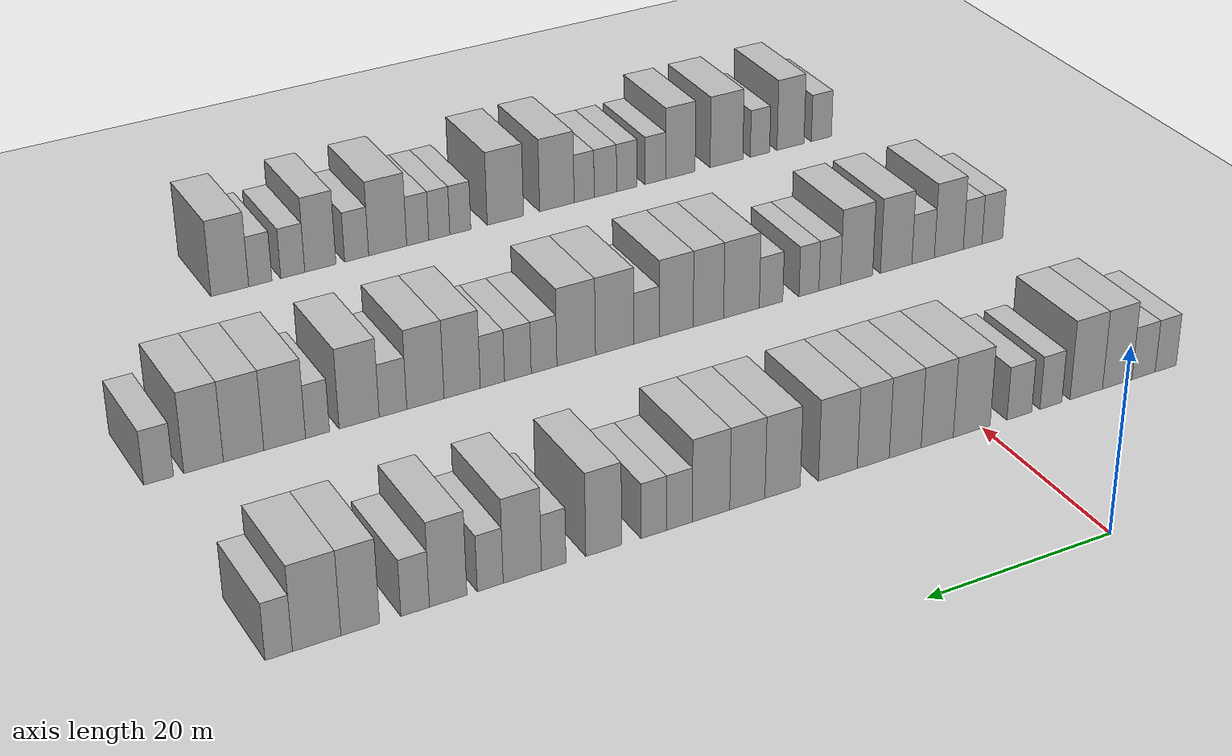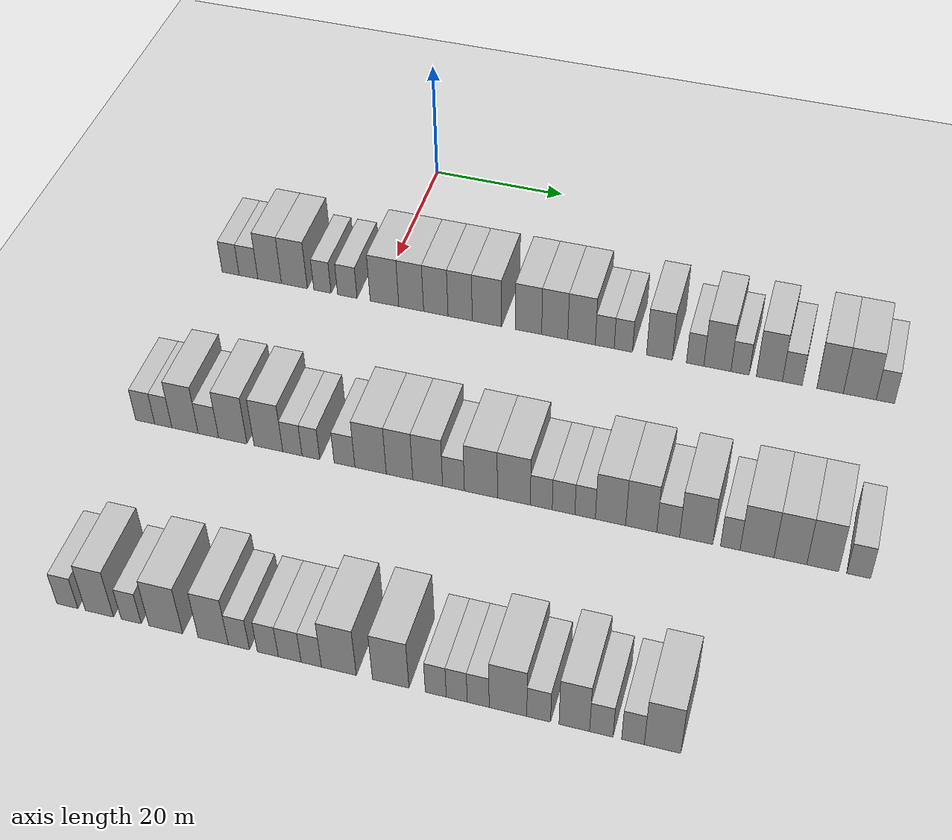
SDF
<sdf version="1.6">
 <world name="default">
  <include><name>ground_plane_1</name><uri>model://HANNAS_ground_plane</uri></include>
  <model name="building_106">
   <static>1</static>
   <pose>25.0000 -22.3956 0 0.000000 0.000000 0.000000</pose>
   <link name="link">
    <pose>0 0 3.00 0 0 0</pose>
    <collision name="collision"><geometry><box><size>10.0000 2.6527 6.0000</size></box></geometry></collision>
    <visual name="visual">
     <cast_shadows>0</cast_shadows>
     <geometry><box><size>10.0000 2.6527 6.0000</size></box></geometry>
     <material>
      <script>
       <uri>model://HANNAS_wall/materials/scripts</uri>
       <uri>model://HANNAS_wall/materials/textures</uri>
       <name>vrc/HANNAS_wall</name>
      </script>
     </material>
    </visual>
   </link>
  </model>
  <model name="building_107">
   <static>1</static>
   <pose>25.0000 -19.6067 0 0.000000 0.000000 0.000000</pose>
   <link name="link">
    <pose>0 0 3.00 0 0 0</pose>
    <collision name="collision"><geometry><box><size>10.0000 2.9250 6.0000</size></box></geometry></collision>
    <visual name="visual">
     <cast_shadows>0</cast_shadows>
     <geometry><box><size>10.0000 2.9250 6.0000</size></box></geometry>
     <material>
      <script>
       <uri>model://HANNAS_wall/materials/scripts</uri>
       <uri>model://HANNAS_wall/materials/textures</uri>
       <name>vrc/HANNAS_wall</name>
      </script>
     </material>
    </visual>
   </link>
  </model>
  <model name="building_108">
   <static>1</static>
   <pose>25.0000 -16.3152 0 0.000000 0.000000 0.000000</pose>
   <link name="link">
    <pose>0 0 4.50 0 0 0</pose>
    <collision name="collision"><geometry><box><size>10.0000 3.6581 9.0000</size></box></geometry></collision>
    <visual name="visual">
     <cast_shadows>0</cast_shadows>
     <geometry><box><size>10.0000 3.6581 9.0000</size></box></geometry>
     <material>
      <script>
       <uri>model://HANNAS_wall/materials/scripts</uri>
       <uri>model://HANNAS_wall/materials/textures</uri>
       <name>vrc/HANNAS_wall</name>
      </script>
     </material>
    </visual>
   </link>
  </model>
  <model name="building_109">
   <static>1</static>
   <pose>25.0000 -12.4879 0 0.000000 0.000000 0.000000</pose>
   <link name="link">
    <pose>0 0 4.50 0 0 0</pose>
    <collision name="collision"><geometry><box><size>10.0000 3.9965 9.0000</size></box></geometry></collision>
    <visual name="visual">
     <cast_shadows>0</cast_shadows>
     <geometry><box><size>10.0000 3.9965 9.0000</size></box></geometry>
     <material>
      <script>
       <uri>model://HANNAS_wall/materials/scripts</uri>
       <uri>model://HANNAS_wall/materials/textures</uri>
       <name>vrc/HANNAS_wall</name>
      </script>
     </material>
    </visual>
   </link>
  </model>
  <model name="building_110">
   <static>1</static>
   <pose>25.0000 -8.1685 0 0.000000 0.000000 0.000000</pose>
   <link name="link">
    <pose>0 0 3.00 0 0 0</pose>
    <collision name="collision"><geometry><box><size>10.0000 2.6422 6.0000</size></box></geometry></collision>
    <visual name="visual">
     <cast_shadows>0</cast_shadows>
     <geometry><box><size>10.0000 2.6422 6.0000</size></box></geometry>
     <material>
      <script>
       <uri>model://HANNAS_wall/materials/scripts</uri>
       <uri>model://HANNAS_wall/materials/textures</uri>
       <name>vrc/HANNAS_wall</name>
      </script>
     </material>
    </visual>
   </link>
  </model>
  <model name="building_111">
   <static>1</static>
   <pose>25.0000 -4.3697 0 0.000000 0.000000 0.000000</pose>
   <link name="link">
    <pose>0 0 3.00 0 0 0</pose>
    <collision name="collision"><geometry><box><size>10.0000 2.9555 6.0000</size></box></geometry></collision>
    <visual name="visual">
     <cast_shadows>0</cast_shadows>
     <geometry><box><size>10.0000 2.9555 6.0000</size></box></geometry>
     <material>
      <script>
       <uri>model://HANNAS_wall/materials/scripts</uri>
       <uri>model://HANNAS_wall/materials/textures</uri>
       <name>vrc/HANNAS_wall</name>
      </script>
     </material>
    </visual>
   </link>
  </model>
  <model name="building_112">
   <static>1</static>
   <pose>25.0000 1.2695 0 0.000000 0.000000 0.000000</pose>
   <link name="link">
    <pose>0 0 4.50 0 0 0</pose>
    <collision name="collision"><geometry><box><size>10.0000 4.3230 9.0000</size></box></geometry></collision>
    <visual name="visual">
     <cast_shadows>0</cast_shadows>
     <geometry><box><size>10.0000 4.3230 9.0000</size></box></geometry>
     <material>
      <script>
       <uri>model://HANNAS_wall/materials/scripts</uri>
       <uri>model://HANNAS_wall/materials/textures</uri>
       <name>vrc/HANNAS_wall</name>
      </script>
     </material>
    </visual>
   </link>
  </model>
  <model name="building_113">
   <static>1</static>
   <pose>25.0000 5.2965 0 0.000000 0.000000 0.000000</pose>
   <link name="link">
    <pose>0 0 4.50 0 0 0</pose>
    <collision name="collision"><geometry><box><size>10.0000 3.7311 9.0000</size></box></geometry></collision>
    <visual name="visual">
     <cast_shadows>0</cast_shadows>
     <geometry><box><size>10.0000 3.7311 9.0000</size></box></geometry>
     <material>
      <script>
       <uri>model://HANNAS_wall/materials/scripts</uri>
       <uri>model://HANNAS_wall/materials/textures</uri>
       <name>vrc/HANNAS_wall</name>
      </script>
     </material>
    </visual>
   </link>
  </model>
  <model name="building_114">
   <static>1</static>
   <pose>25.0000 8.9844 0 0.000000 0.000000 0.000000</pose>
   <link name="link">
    <pose>0 0 4.50 0 0 0</pose>
    <collision name="collision"><geometry><box><size>10.0000 3.6447 9.0000</size></box></geometry></collision>
    <visual name="visual">
     <cast_shadows>0</cast_shadows>
     <geometry><box><size>10.0000 3.6447 9.0000</size></box></geometry>
     <material>
      <script>
       <uri>model://HANNAS_wall/materials/scripts</uri>
       <uri>model://HANNAS_wall/materials/textures</uri>
       <name>vrc/HANNAS_wall</name>
      </script>
     </material>
    </visual>
   </link>
  </model>
  <model name="building_115">
   <static>1</static>
   <pose>25.0000 12.6082 0 0.000000 0.000000 0.000000</pose>
   <link name="link">
    <pose>0 0 4.50 0 0 0</pose>
    <collision name="collision"><geometry><box><size>10.0000 3.6028 9.0000</size></box></geometry></collision>
    <visual name="visual">
     <cast_shadows>0</cast_shadows>
     <geometry><box><size>10.0000 3.6028 9.0000</size></box></geometry>
     <material>
      <script>
       <uri>model://HANNAS_wall/materials/scripts</uri>
       <uri>model://HANNAS_wall/materials/textures</uri>
       <name>vrc/HANNAS_wall</name>
      </script>
     </material>
    </visual>
   </link>
  </model>
  <model name="building_116">
   <static>1</static>
   <pose>25.0000 16.5729 0 0.000000 0.000000 0.000000</pose>
   <link name="link">
    <pose>0 0 4.50 0 0 0</pose>
    <collision name="collision"><geometry><box><size>10.0000 4.3267 9.0000</size></box></geometry></collision>
    <visual name="visual">
     <cast_shadows>0</cast_shadows>
     <geometry><box><size>10.0000 4.3267 9.0000</size></box></geometry>
     <material>
      <script>
       <uri>model://HANNAS_wall/materials/scripts</uri>
       <uri>model://HANNAS_wall/materials/textures</uri>
       <name>vrc/HANNAS_wall</name>
      </script>
     </material>
    </visual>
   </link>
  </model>
  <model name="building_117">
   <static>1</static>
   <pose>25.0000 22.6590 0 0.000000 0.000000 0.000000</pose>
   <link name="link">
    <pose>0 0 4.50 0 0 0</pose>
    <collision name="collision"><geometry><box><size>10.0000 3.8454 9.0000</size></box></geometry></collision>
    <visual name="visual">
     <cast_shadows>0</cast_shadows>
     <geometry><box><size>10.0000 3.8454 9.0000</size></box></geometry>
     <material>
      <script>
       <uri>model://HANNAS_wall/materials/scripts</uri>
       <uri>model://HANNAS_wall/materials/textures</uri>
       <name>vrc/HANNAS_wall</name>
      </script>
     </material>
    </visual>
   </link>
  </model>
  <model name="building_118">
   <static>1</static>
   <pose>25.0000 26.4753 0 0.000000 0.000000 0.000000</pose>
   <link name="link">
    <pose>0 0 4.50 0 0 0</pose>
    <collision name="collision"><geometry><box><size>10.0000 3.7873 9.0000</size></box></geometry></collision>
    <visual name="visual">
     <cast_shadows>0</cast_shadows>
     <geometry><box><size>10.0000 3.7873 9.0000</size></box></geometry>
     <material>
      <script>
       <uri>model://HANNAS_wall/materials/scripts</uri>
       <uri>model://HANNAS_wall/materials/textures</uri>
       <name>vrc/HANNAS_wall</name>
      </script>
     </material>
    </visual>
   </link>
  </model>
  <model name="building_119">
   <static>1</static>
   <pose>25.0000 30.3570 0 0.000000 0.000000 0.000000</pose>
   <link name="link">
    <pose>0 0 4.50 0 0 0</pose>
    <collision name="collision"><geometry><box><size>10.0000 3.9761 9.0000</size></box></geometry></collision>
    <visual name="visual">
     <cast_shadows>0</cast_shadows>
     <geometry><box><size>10.0000 3.9761 9.0000</size></box></geometry>
     <material>
      <script>
       <uri>model://HANNAS_wall/materials/scripts</uri>
       <uri>model://HANNAS_wall/materials/textures</uri>
       <name>vrc/HANNAS_wall</name>
      </script>
     </material>
    </visual>
   </link>
  </model>
  <model name="building_120">
   <static>1</static>
   <pose>25.0000 33.7043 0 0.000000 0.000000 0.000000</pose>
   <link name="link">
    <pose>0 0 3.00 0 0 0</pose>
    <collision name="collision"><geometry><box><size>10.0000 2.7185 6.0000</size></box></geometry></collision>
    <visual name="visual">
     <cast_shadows>0</cast_shadows>
     <geometry><box><size>10.0000 2.7185 6.0000</size></box></geometry>
     <material>
      <script>
       <uri>model://HANNAS_wall/materials/scripts</uri>
       <uri>model://HANNAS_wall/materials/textures</uri>
       <name>vrc/HANNAS_wall</name>
      </script>
     </material>
    </visual>
   </link>
  </model>
  <model name="building_121">
   <static>1</static>
   <pose>25.0000 36.3696 0 0.000000 0.000000 0.000000</pose>
   <link name="link">
    <pose>0 0 3.00 0 0 0</pose>
    <collision name="collision"><geometry><box><size>10.0000 2.6121 6.0000</size></box></geometry></collision>
    <visual name="visual">
     <cast_shadows>0</cast_shadows>
     <geometry><box><size>10.0000 2.6121 6.0000</size></box></geometry>
     <material>
      <script>
       <uri>model://HANNAS_wall/materials/scripts</uri>
       <uri>model://HANNAS_wall/materials/textures</uri>
       <name>vrc/HANNAS_wall</name>
      </script>
     </material>
    </visual>
   </link>
  </model>
  <model name="building_122">
   <static>1</static>
   <pose>25.0000 41.5032 0 0.000000 0.000000 0.000000</pose>
   <link name="link">
    <pose>0 0 4.50 0 0 0</pose>
    <collision name="collision"><geometry><box><size>10.0000 3.6550 9.0000</size></box></geometry></collision>
    <visual name="visual">
     <cast_shadows>0</cast_shadows>
     <geometry><box><size>10.0000 3.6550 9.0000</size></box></geometry>
     <material>
      <script>
       <uri>model://HANNAS_wall/materials/scripts</uri>
       <uri>model://HANNAS_wall/materials/textures</uri>
       <name>vrc/HANNAS_wall</name>
      </script>
     </material>
    </visual>
   </link>
  </model>
  <model name="building_123">
   <static>1</static>
   <pose>25.0000 46.5540 0 0.000000 0.000000 0.000000</pose>
   <link name="link">
    <pose>0 0 3.00 0 0 0</pose>
    <collision name="collision"><geometry><box><size>10.0000 2.4467 6.0000</size></box></geometry></collision>
    <visual name="visual">
     <cast_shadows>0</cast_shadows>
     <geometry><box><size>10.0000 2.4467 6.0000</size></box></geometry>
     <material>
      <script>
       <uri>model://HANNAS_wall/materials/scripts</uri>
       <uri>model://HANNAS_wall/materials/textures</uri>
       <name>vrc/HANNAS_wall</name>
      </script>
     </material>
    </visual>
   </link>
  </model>
  <model name="building_124">
   <static>1</static>
   <pose>25.0000 49.6722 0 0.000000 0.000000 0.000000</pose>
   <link name="link">
    <pose>0 0 4.50 0 0 0</pose>
    <collision name="collision"><geometry><box><size>10.0000 3.7896 9.0000</size></box></geometry></collision>
    <visual name="visual">
     <cast_shadows>0</cast_shadows>
     <geometry><box><size>10.0000 3.7896 9.0000</size></box></geometry>
     <material>
      <script>
       <uri>model://HANNAS_wall/materials/scripts</uri>
       <uri>model://HANNAS_wall/materials/textures</uri>
       <name>vrc/HANNAS_wall</name>
      </script>
     </material>
    </visual>
   </link>
  </model>
  <model name="building_125">
   <static>1</static>
   <pose>25.0000 52.8365 0 0.000000 0.000000 0.000000</pose>
   <link name="link">
    <pose>0 0 3.00 0 0 0</pose>
    <collision name="collision"><geometry><box><size>10.0000 2.5389 6.0000</size></box></geometry></collision>
    <visual name="visual">
     <cast_shadows>0</cast_shadows>
     <geometry><box><size>10.0000 2.5389 6.0000</size></box></geometry>
     <material>
      <script>
       <uri>model://HANNAS_wall/materials/scripts</uri>
       <uri>model://HANNAS_wall/materials/textures</uri>
       <name>vrc/HANNAS_wall</name>
      </script>
     </material>
    </visual>
   </link>
  </model>
  <model name="building_126">
   <static>1</static>
   <pose>25.0000 56.9098 0 0.000000 0.000000 0.000000</pose>
   <link name="link">
    <pose>0 0 4.50 0 0 0</pose>
    <collision name="collision"><geometry><box><size>10.0000 3.6077 9.0000</size></box></geometry></collision>
    <visual name="visual">
     <cast_shadows>0</cast_shadows>
     <geometry><box><size>10.0000 3.6077 9.0000</size></box></geometry>
     <material>
      <script>
       <uri>model://HANNAS_wall/materials/scripts</uri>
       <uri>model://HANNAS_wall/materials/textures</uri>
       <name>vrc/HANNAS_wall</name>
      </script>
     </material>
    </visual>
   </link>
  </model>
  <model name="building_127">
   <static>1</static>
   <pose>25.0000 60.0769 0 0.000000 0.000000 0.000000</pose>
   <link name="link">
    <pose>0 0 3.00 0 0 0</pose>
    <collision name="collision"><geometry><box><size>10.0000 2.7265 6.0000</size></box></geometry></collision>
    <visual name="visual">
     <cast_shadows>0</cast_shadows>
     <geometry><box><size>10.0000 2.7265 6.0000</size></box></geometry>
     <material>
      <script>
       <uri>model://HANNAS_wall/materials/scripts</uri>
       <uri>model://HANNAS_wall/materials/textures</uri>
       <name>vrc/HANNAS_wall</name>
      </script>
     </material>
    </visual>
   </link>
  </model>
  <model name="building_128">
   <static>1</static>
   <pose>25.0000 65.2477 0 0.000000 0.000000 0.000000</pose>
   <link name="link">
    <pose>0 0 4.50 0 0 0</pose>
    <collision name="collision"><geometry><box><size>10.0000 3.6151 9.0000</size></box></geometry></collision>
    <visual name="visual">
     <cast_shadows>0</cast_shadows>
     <geometry><box><size>10.0000 3.6151 9.0000</size></box></geometry>
     <material>
      <script>
       <uri>model://HANNAS_wall/materials/scripts</uri>
       <uri>model://HANNAS_wall/materials/textures</uri>
       <name>vrc/HANNAS_wall</name>
      </script>
     </material>
    </visual>
   </link>
  </model>
  <model name="building_129">
   <static>1</static>
   <pose>25.0000 69.2814 0 0.000000 0.000000 0.000000</pose>
   <link name="link">
    <pose>0 0 4.50 0 0 0</pose>
    <collision name="collision"><geometry><box><size>10.0000 4.4523 9.0000</size></box></geometry></collision>
    <visual name="visual">
     <cast_shadows>0</cast_shadows>
     <geometry><box><size>10.0000 4.4523 9.0000</size></box></geometry>
     <material>
      <script>
       <uri>model://HANNAS_wall/materials/scripts</uri>
       <uri>model://HANNAS_wall/materials/textures</uri>
       <name>vrc/HANNAS_wall</name>
      </script>
     </material>
    </visual>
   </link>
  </model>
  <model name="building_130">
   <static>1</static>
   <pose>25.0000 72.7541 0 0.000000 0.000000 0.000000</pose>
   <link name="link">
    <pose>0 0 3.00 0 0 0</pose>
    <collision name="collision"><geometry><box><size>10.0000 2.4931 6.0000</size></box></geometry></collision>
    <visual name="visual">
     <cast_shadows>0</cast_shadows>
     <geometry><box><size>10.0000 2.4931 6.0000</size></box></geometry>
     <material>
      <script>
       <uri>model://HANNAS_wall/materials/scripts</uri>
       <uri>model://HANNAS_wall/materials/textures</uri>
       <name>vrc/HANNAS_wall</name>
      </script>
     </material>
    </visual>
   </link>
  </model>
  <model name="building_335">
   <static>1</static>
   <pose>55.0000 -22.5249 0 0.000000 0.000000 0.000000</pose>
   <link name="link">
    <pose>0 0 3.00 0 0 0</pose>
    <collision name="collision"><geometry><box><size>10.0000 2.7575 6.0000</size></box></geometry></collision>
    <visual name="visual">
     <cast_shadows>0</cast_shadows>
     <geometry><box><size>10.0000 2.7575 6.0000</size></box></geometry>
     <material>
      <script>
       <uri>model://HANNAS_wall/materials/scripts</uri>
       <uri>model://HANNAS_wall/materials/textures</uri>
       <name>vrc/HANNAS_wall</name>
      </script>
     </material>
    </visual>
   </link>
  </model>
  <model name="building_336">
   <static>1</static>
   <pose>55.0000 -19.9061 0 0.000000 0.000000 0.000000</pose>
   <link name="link">
    <pose>0 0 3.00 0 0 0</pose>
    <collision name="collision"><geometry><box><size>10.0000 2.4801 6.0000</size></box></geometry></collision>
    <visual name="visual">
     <cast_shadows>0</cast_shadows>
     <geometry><box><size>10.0000 2.4801 6.0000</size></box></geometry>
     <material>
      <script>
       <uri>model://HANNAS_wall/materials/scripts</uri>
       <uri>model://HANNAS_wall/materials/textures</uri>
       <name>vrc/HANNAS_wall</name>
      </script>
     </material>
    </visual>
   </link>
  </model>
  <model name="building_337">
   <static>1</static>
   <pose>55.0000 -16.7700 0 0.000000 0.000000 0.000000</pose>
   <link name="link">
    <pose>0 0 4.50 0 0 0</pose>
    <collision name="collision"><geometry><box><size>10.0000 3.7921 9.0000</size></box></geometry></collision>
    <visual name="visual">
     <cast_shadows>0</cast_shadows>
     <geometry><box><size>10.0000 3.7921 9.0000</size></box></geometry>
     <material>
      <script>
       <uri>model://HANNAS_wall/materials/scripts</uri>
       <uri>model://HANNAS_wall/materials/textures</uri>
       <name>vrc/HANNAS_wall</name>
      </script>
     </material>
    </visual>
   </link>
  </model>
  <model name="building_338">
   <static>1</static>
   <pose>55.0000 -13.4149 0 0.000000 0.000000 0.000000</pose>
   <link name="link">
    <pose>0 0 3.00 0 0 0</pose>
    <collision name="collision"><geometry><box><size>10.0000 2.9180 6.0000</size></box></geometry></collision>
    <visual name="visual">
     <cast_shadows>0</cast_shadows>
     <geometry><box><size>10.0000 2.9180 6.0000</size></box></geometry>
     <material>
      <script>
       <uri>model://HANNAS_wall/materials/scripts</uri>
       <uri>model://HANNAS_wall/materials/textures</uri>
       <name>vrc/HANNAS_wall</name>
      </script>
     </material>
    </visual>
   </link>
  </model>
  <model name="building_339">
   <static>1</static>
   <pose>55.0000 -9.9382 0 0.000000 0.000000 0.000000</pose>
   <link name="link">
    <pose>0 0 4.50 0 0 0</pose>
    <collision name="collision"><geometry><box><size>10.0000 4.0355 9.0000</size></box></geometry></collision>
    <visual name="visual">
     <cast_shadows>0</cast_shadows>
     <geometry><box><size>10.0000 4.0355 9.0000</size></box></geometry>
     <material>
      <script>
       <uri>model://HANNAS_wall/materials/scripts</uri>
       <uri>model://HANNAS_wall/materials/textures</uri>
       <name>vrc/HANNAS_wall</name>
      </script>
     </material>
    </visual>
   </link>
  </model>
  <model name="building_340">
   <static>1</static>
   <pose>55.0000 -4.8952 0 0.000000 0.000000 0.000000</pose>
   <link name="link">
    <pose>0 0 4.50 0 0 0</pose>
    <collision name="collision"><geometry><box><size>10.0000 4.0504 9.0000</size></box></geometry></collision>
    <visual name="visual">
     <cast_shadows>0</cast_shadows>
     <geometry><box><size>10.0000 4.0504 9.0000</size></box></geometry>
     <material>
      <script>
       <uri>model://HANNAS_wall/materials/scripts</uri>
       <uri>model://HANNAS_wall/materials/textures</uri>
       <name>vrc/HANNAS_wall</name>
      </script>
     </material>
    </visual>
   </link>
  </model>
  <model name="building_341">
   <static>1</static>
   <pose>55.0000 -1.5161 0 0.000000 0.000000 0.000000</pose>
   <link name="link">
    <pose>0 0 3.00 0 0 0</pose>
    <collision name="collision"><geometry><box><size>10.0000 2.7078 6.0000</size></box></geometry></collision>
    <visual name="visual">
     <cast_shadows>0</cast_shadows>
     <geometry><box><size>10.0000 2.7078 6.0000</size></box></geometry>
     <material>
      <script>
       <uri>model://HANNAS_wall/materials/scripts</uri>
       <uri>model://HANNAS_wall/materials/textures</uri>
       <name>vrc/HANNAS_wall</name>
      </script>
     </material>
    </visual>
   </link>
  </model>
  <model name="building_342">
   <static>1</static>
   <pose>55.0000 1.0680 0 0.000000 0.000000 0.000000</pose>
   <link name="link">
    <pose>0 0 3.00 0 0 0</pose>
    <collision name="collision"><geometry><box><size>10.0000 2.4604 6.0000</size></box></geometry></collision>
    <visual name="visual">
     <cast_shadows>0</cast_shadows>
     <geometry><box><size>10.0000 2.4604 6.0000</size></box></geometry>
     <material>
      <script>
       <uri>model://HANNAS_wall/materials/scripts</uri>
       <uri>model://HANNAS_wall/materials/textures</uri>
       <name>vrc/HANNAS_wall</name>
      </script>
     </material>
    </visual>
   </link>
  </model>
  <model name="building_343">
   <static>1</static>
   <pose>55.0000 5.7350 0 0.000000 0.000000 0.000000</pose>
   <link name="link">
    <pose>0 0 3.00 0 0 0</pose>
    <collision name="collision"><geometry><box><size>10.0000 2.8736 6.0000</size></box></geometry></collision>
    <visual name="visual">
     <cast_shadows>0</cast_shadows>
     <geometry><box><size>10.0000 2.8736 6.0000</size></box></geometry>
     <material>
      <script>
       <uri>model://HANNAS_wall/materials/scripts</uri>
       <uri>model://HANNAS_wall/materials/textures</uri>
       <name>vrc/HANNAS_wall</name>
      </script>
     </material>
    </visual>
   </link>
  </model>
  <model name="building_344">
   <static>1</static>
   <pose>55.0000 9.3259 0 0.000000 0.000000 0.000000</pose>
   <link name="link">
    <pose>0 0 4.50 0 0 0</pose>
    <collision name="collision"><geometry><box><size>10.0000 4.3081 9.0000</size></box></geometry></collision>
    <visual name="visual">
     <cast_shadows>0</cast_shadows>
     <geometry><box><size>10.0000 4.3081 9.0000</size></box></geometry>
     <material>
      <script>
       <uri>model://HANNAS_wall/materials/scripts</uri>
       <uri>model://HANNAS_wall/materials/textures</uri>
       <name>vrc/HANNAS_wall</name>
      </script>
     </material>
    </visual>
   </link>
  </model>
  <model name="building_345">
   <static>1</static>
   <pose>55.0000 13.2983 0 0.000000 0.000000 0.000000</pose>
   <link name="link">
    <pose>0 0 4.50 0 0 0</pose>
    <collision name="collision"><geometry><box><size>10.0000 3.6367 9.0000</size></box></geometry></collision>
    <visual name="visual">
     <cast_shadows>0</cast_shadows>
     <geometry><box><size>10.0000 3.6367 9.0000</size></box></geometry>
     <material>
      <script>
       <uri>model://HANNAS_wall/materials/scripts</uri>
       <uri>model://HANNAS_wall/materials/textures</uri>
       <name>vrc/HANNAS_wall</name>
      </script>
     </material>
    </visual>
   </link>
  </model>
  <model name="building_346">
   <static>1</static>
   <pose>55.0000 17.1340 0 0.000000 0.000000 0.000000</pose>
   <link name="link">
    <pose>0 0 4.50 0 0 0</pose>
    <collision name="collision"><geometry><box><size>10.0000 4.0348 9.0000</size></box></geometry></collision>
    <visual name="visual">
     <cast_shadows>0</cast_shadows>
     <geometry><box><size>10.0000 4.0348 9.0000</size></box></geometry>
     <material>
      <script>
       <uri>model://HANNAS_wall/materials/scripts</uri>
       <uri>model://HANNAS_wall/materials/textures</uri>
       <name>vrc/HANNAS_wall</name>
      </script>
     </material>
    </visual>
   </link>
  </model>
  <model name="building_347">
   <static>1</static>
   <pose>55.0000 20.6215 0 0.000000 0.000000 0.000000</pose>
   <link name="link">
    <pose>0 0 3.00 0 0 0</pose>
    <collision name="collision"><geometry><box><size>10.0000 2.9403 6.0000</size></box></geometry></collision>
    <visual name="visual">
     <cast_shadows>0</cast_shadows>
     <geometry><box><size>10.0000 2.9403 6.0000</size></box></geometry>
     <material>
      <script>
       <uri>model://HANNAS_wall/materials/scripts</uri>
       <uri>model://HANNAS_wall/materials/textures</uri>
       <name>vrc/HANNAS_wall</name>
      </script>
     </material>
    </visual>
   </link>
  </model>
  <model name="building_348">
   <static>1</static>
   <pose>55.0000 24.3024 0 0.000000 0.000000 0.000000</pose>
   <link name="link">
    <pose>0 0 4.50 0 0 0</pose>
    <collision name="collision"><geometry><box><size>10.0000 4.4215 9.0000</size></box></geometry></collision>
    <visual name="visual">
     <cast_shadows>0</cast_shadows>
     <geometry><box><size>10.0000 4.4215 9.0000</size></box></geometry>
     <material>
      <script>
       <uri>model://HANNAS_wall/materials/scripts</uri>
       <uri>model://HANNAS_wall/materials/textures</uri>
       <name>vrc/HANNAS_wall</name>
      </script>
     </material>
    </visual>
   </link>
  </model>
  <model name="building_349">
   <static>1</static>
   <pose>55.0000 28.7031 0 0.000000 0.000000 0.000000</pose>
   <link name="link">
    <pose>0 0 4.50 0 0 0</pose>
    <collision name="collision"><geometry><box><size>10.0000 4.3799 9.0000</size></box></geometry></collision>
    <visual name="visual">
     <cast_shadows>0</cast_shadows>
     <geometry><box><size>10.0000 4.3799 9.0000</size></box></geometry>
     <material>
      <script>
       <uri>model://HANNAS_wall/materials/scripts</uri>
       <uri>model://HANNAS_wall/materials/textures</uri>
       <name>vrc/HANNAS_wall</name>
      </script>
     </material>
    </visual>
   </link>
  </model>
  <model name="building_350">
   <static>1</static>
   <pose>55.0000 32.3401 0 0.000000 0.000000 0.000000</pose>
   <link name="link">
    <pose>0 0 3.00 0 0 0</pose>
    <collision name="collision"><geometry><box><size>10.0000 2.8941 6.0000</size></box></geometry></collision>
    <visual name="visual">
     <cast_shadows>0</cast_shadows>
     <geometry><box><size>10.0000 2.8941 6.0000</size></box></geometry>
     <material>
      <script>
       <uri>model://HANNAS_wall/materials/scripts</uri>
       <uri>model://HANNAS_wall/materials/textures</uri>
       <name>vrc/HANNAS_wall</name>
      </script>
     </material>
    </visual>
   </link>
  </model>
  <model name="building_351">
   <static>1</static>
   <pose>55.0000 35.2714 0 0.000000 0.000000 0.000000</pose>
   <link name="link">
    <pose>0 0 3.00 0 0 0</pose>
    <collision name="collision"><geometry><box><size>10.0000 2.9686 6.0000</size></box></geometry></collision>
    <visual name="visual">
     <cast_shadows>0</cast_shadows>
     <geometry><box><size>10.0000 2.9686 6.0000</size></box></geometry>
     <material>
      <script>
       <uri>model://HANNAS_wall/materials/scripts</uri>
       <uri>model://HANNAS_wall/materials/textures</uri>
       <name>vrc/HANNAS_wall</name>
      </script>
     </material>
    </visual>
   </link>
  </model>
  <model name="building_352">
   <static>1</static>
   <pose>55.0000 38.0929 0 0.000000 0.000000 0.000000</pose>
   <link name="link">
    <pose>0 0 3.00 0 0 0</pose>
    <collision name="collision"><geometry><box><size>10.0000 2.6744 6.0000</size></box></geometry></collision>
    <visual name="visual">
     <cast_shadows>0</cast_shadows>
     <geometry><box><size>10.0000 2.6744 6.0000</size></box></geometry>
     <material>
      <script>
       <uri>model://HANNAS_wall/materials/scripts</uri>
       <uri>model://HANNAS_wall/materials/textures</uri>
       <name>vrc/HANNAS_wall</name>
      </script>
     </material>
    </visual>
   </link>
  </model>
  <model name="building_353">
   <static>1</static>
   <pose>55.0000 41.4033 0 0.000000 0.000000 0.000000</pose>
   <link name="link">
    <pose>0 0 4.50 0 0 0</pose>
    <collision name="collision"><geometry><box><size>10.0000 3.9463 9.0000</size></box></geometry></collision>
    <visual name="visual">
     <cast_shadows>0</cast_shadows>
     <geometry><box><size>10.0000 3.9463 9.0000</size></box></geometry>
     <material>
      <script>
       <uri>model://HANNAS_wall/materials/scripts</uri>
       <uri>model://HANNAS_wall/materials/textures</uri>
       <name>vrc/HANNAS_wall</name>
      </script>
     </material>
    </visual>
   </link>
  </model>
  <model name="building_354">
   <static>1</static>
   <pose>55.0000 45.3855 0 0.000000 0.000000 0.000000</pose>
   <link name="link">
    <pose>0 0 4.50 0 0 0</pose>
    <collision name="collision"><geometry><box><size>10.0000 4.0182 9.0000</size></box></geometry></collision>
    <visual name="visual">
     <cast_shadows>0</cast_shadows>
     <geometry><box><size>10.0000 4.0182 9.0000</size></box></geometry>
     <material>
      <script>
       <uri>model://HANNAS_wall/materials/scripts</uri>
       <uri>model://HANNAS_wall/materials/textures</uri>
       <name>vrc/HANNAS_wall</name>
      </script>
     </material>
    </visual>
   </link>
  </model>
  <model name="building_355">
   <static>1</static>
   <pose>55.0000 48.8639 0 0.000000 0.000000 0.000000</pose>
   <link name="link">
    <pose>0 0 3.00 0 0 0</pose>
    <collision name="collision"><geometry><box><size>10.0000 2.9387 6.0000</size></box></geometry></collision>
    <visual name="visual">
     <cast_shadows>0</cast_shadows>
     <geometry><box><size>10.0000 2.9387 6.0000</size></box></geometry>
     <material>
      <script>
       <uri>model://HANNAS_wall/materials/scripts</uri>
       <uri>model://HANNAS_wall/materials/textures</uri>
       <name>vrc/HANNAS_wall</name>
      </script>
     </material>
    </visual>
   </link>
  </model>
  <model name="building_356">
   <static>1</static>
   <pose>55.0000 52.4426 0 0.000000 0.000000 0.000000</pose>
   <link name="link">
    <pose>0 0 4.50 0 0 0</pose>
    <collision name="collision"><geometry><box><size>10.0000 4.2188 9.0000</size></box></geometry></collision>
    <visual name="visual">
     <cast_shadows>0</cast_shadows>
     <geometry><box><size>10.0000 4.2188 9.0000</size></box></geometry>
     <material>
      <script>
       <uri>model://HANNAS_wall/materials/scripts</uri>
       <uri>model://HANNAS_wall/materials/textures</uri>
       <name>vrc/HANNAS_wall</name>
      </script>
     </material>
    </visual>
   </link>
  </model>
  <model name="building_357">
   <static>1</static>
   <pose>55.0000 56.7901 0 0.000000 0.000000 0.000000</pose>
   <link name="link">
    <pose>0 0 3.00 0 0 0</pose>
    <collision name="collision"><geometry><box><size>10.0000 2.4763 6.0000</size></box></geometry></collision>
    <visual name="visual">
     <cast_shadows>0</cast_shadows>
     <geometry><box><size>10.0000 2.4763 6.0000</size></box></geometry>
     <material>
      <script>
       <uri>model://HANNAS_wall/materials/scripts</uri>
       <uri>model://HANNAS_wall/materials/textures</uri>
       <name>vrc/HANNAS_wall</name>
      </script>
     </material>
    </visual>
   </link>
  </model>
  <model name="building_358">
   <static>1</static>
   <pose>55.0000 60.1651 0 0.000000 0.000000 0.000000</pose>
   <link name="link">
    <pose>0 0 4.50 0 0 0</pose>
    <collision name="collision"><geometry><box><size>10.0000 4.2736 9.0000</size></box></geometry></collision>
    <visual name="visual">
     <cast_shadows>0</cast_shadows>
     <geometry><box><size>10.0000 4.2736 9.0000</size></box></geometry>
     <material>
      <script>
       <uri>model://HANNAS_wall/materials/scripts</uri>
       <uri>model://HANNAS_wall/materials/textures</uri>
       <name>vrc/HANNAS_wall</name>
      </script>
     </material>
    </visual>
   </link>
  </model>
  <model name="building_359">
   <static>1</static>
   <pose>55.0000 64.3447 0 0.000000 0.000000 0.000000</pose>
   <link name="link">
    <pose>0 0 4.50 0 0 0</pose>
    <collision name="collision"><geometry><box><size>10.0000 4.0857 9.0000</size></box></geometry></collision>
    <visual name="visual">
     <cast_shadows>0</cast_shadows>
     <geometry><box><size>10.0000 4.0857 9.0000</size></box></geometry>
     <material>
      <script>
       <uri>model://HANNAS_wall/materials/scripts</uri>
       <uri>model://HANNAS_wall/materials/textures</uri>
       <name>vrc/HANNAS_wall</name>
      </script>
     </material>
    </visual>
   </link>
  </model>
  <model name="building_360">
   <static>1</static>
   <pose>55.0000 68.3667 0 0.000000 0.000000 0.000000</pose>
   <link name="link">
    <pose>0 0 4.50 0 0 0</pose>
    <collision name="collision"><geometry><box><size>10.0000 3.9582 9.0000</size></box></geometry></collision>
    <visual name="visual">
     <cast_shadows>0</cast_shadows>
     <geometry><box><size>10.0000 3.9582 9.0000</size></box></geometry>
     <material>
      <script>
       <uri>model://HANNAS_wall/materials/scripts</uri>
       <uri>model://HANNAS_wall/materials/textures</uri>
       <name>vrc/HANNAS_wall</name>
      </script>
     </material>
    </visual>
   </link>
  </model>
  <model name="building_361">
   <static>1</static>
   <pose>55.0000 72.8158 0 0.000000 0.000000 0.000000</pose>
   <link name="link">
    <pose>0 0 3.00 0 0 0</pose>
    <collision name="collision"><geometry><box><size>10.0000 2.9400 6.0000</size></box></geometry></collision>
    <visual name="visual">
     <cast_shadows>0</cast_shadows>
     <geometry><box><size>10.0000 2.9400 6.0000</size></box></geometry>
     <material>
      <script>
       <uri>model://HANNAS_wall/materials/scripts</uri>
       <uri>model://HANNAS_wall/materials/textures</uri>
       <name>vrc/HANNAS_wall</name>
      </script>
     </material>
    </visual>
   </link>
  </model>
  <model name="building_559">
   <static>1</static>
   <pose>85.0000 -19.3549 0 0.000000 0.000000 0.000000</pose>
   <link name="link">
    <pose>0 0 3.00 0 0 0</pose>
    <collision name="collision"><geometry><box><size>10.0000 2.7888 6.0000</size></box></geometry></collision>
    <visual name="visual">
     <cast_shadows>0</cast_shadows>
     <geometry><box><size>10.0000 2.7888 6.0000</size></box></geometry>
     <material>
      <script>
       <uri>model://HANNAS_wall/materials/scripts</uri>
       <uri>model://HANNAS_wall/materials/textures</uri>
       <name>vrc/HANNAS_wall</name>
      </script>
     </material>
    </visual>
   </link>
  </model>
  <model name="building_560">
   <static>1</static>
   <pose>85.0000 -15.1041 0 0.000000 0.000000 0.000000</pose>
   <link name="link">
    <pose>0 0 4.50 0 0 0</pose>
    <collision name="collision"><geometry><box><size>10.0000 3.7129 9.0000</size></box></geometry></collision>
    <visual name="visual">
     <cast_shadows>0</cast_shadows>
     <geometry><box><size>10.0000 3.7129 9.0000</size></box></geometry>
     <material>
      <script>
       <uri>model://HANNAS_wall/materials/scripts</uri>
       <uri>model://HANNAS_wall/materials/textures</uri>
       <name>vrc/HANNAS_wall</name>
      </script>
     </material>
    </visual>
   </link>
  </model>
  <model name="building_561">
   <static>1</static>
   <pose>85.0000 -10.9359 0 0.000000 0.000000 0.000000</pose>
   <link name="link">
    <pose>0 0 3.00 0 0 0</pose>
    <collision name="collision"><geometry><box><size>10.0000 2.6234 6.0000</size></box></geometry></collision>
    <visual name="visual">
     <cast_shadows>0</cast_shadows>
     <geometry><box><size>10.0000 2.6234 6.0000</size></box></geometry>
     <material>
      <script>
       <uri>model://HANNAS_wall/materials/scripts</uri>
       <uri>model://HANNAS_wall/materials/textures</uri>
       <name>vrc/HANNAS_wall</name>
      </script>
     </material>
    </visual>
   </link>
  </model>
  <model name="building_562">
   <static>1</static>
   <pose>85.0000 -6.4386 0 0.000000 0.000000 0.000000</pose>
   <link name="link">
    <pose>0 0 4.50 0 0 0</pose>
    <collision name="collision"><geometry><box><size>10.0000 4.3713 9.0000</size></box></geometry></collision>
    <visual name="visual">
     <cast_shadows>0</cast_shadows>
     <geometry><box><size>10.0000 4.3713 9.0000</size></box></geometry>
     <material>
      <script>
       <uri>model://HANNAS_wall/materials/scripts</uri>
       <uri>model://HANNAS_wall/materials/textures</uri>
       <name>vrc/HANNAS_wall</name>
      </script>
     </material>
    </visual>
   </link>
  </model>
  <model name="building_563">
   <static>1</static>
   <pose>85.0000 -0.3180 0 0.000000 0.000000 0.000000</pose>
   <link name="link">
    <pose>0 0 4.50 0 0 0</pose>
    <collision name="collision"><geometry><box><size>10.0000 3.8699 9.0000</size></box></geometry></collision>
    <visual name="visual">
     <cast_shadows>0</cast_shadows>
     <geometry><box><size>10.0000 3.8699 9.0000</size></box></geometry>
     <material>
      <script>
       <uri>model://HANNAS_wall/materials/scripts</uri>
       <uri>model://HANNAS_wall/materials/textures</uri>
       <name>vrc/HANNAS_wall</name>
      </script>
     </material>
    </visual>
   </link>
  </model>
  <model name="building_564">
   <static>1</static>
   <pose>85.0000 2.9668 0 0.000000 0.000000 0.000000</pose>
   <link name="link">
    <pose>0 0 3.00 0 0 0</pose>
    <collision name="collision"><geometry><box><size>10.0000 2.6997 6.0000</size></box></geometry></collision>
    <visual name="visual">
     <cast_shadows>0</cast_shadows>
     <geometry><box><size>10.0000 2.6997 6.0000</size></box></geometry>
     <material>
      <script>
       <uri>model://HANNAS_wall/materials/scripts</uri>
       <uri>model://HANNAS_wall/materials/textures</uri>
       <name>vrc/HANNAS_wall</name>
      </script>
     </material>
    </visual>
   </link>
  </model>
  <model name="building_565">
   <static>1</static>
   <pose>85.0000 6.6432 0 0.000000 0.000000 0.000000</pose>
   <link name="link">
    <pose>0 0 3.00 0 0 0</pose>
    <collision name="collision"><geometry><box><size>10.0000 2.6533 6.0000</size></box></geometry></collision>
    <visual name="visual">
     <cast_shadows>0</cast_shadows>
     <geometry><box><size>10.0000 2.6533 6.0000</size></box></geometry>
     <material>
      <script>
       <uri>model://HANNAS_wall/materials/scripts</uri>
       <uri>model://HANNAS_wall/materials/textures</uri>
       <name>vrc/HANNAS_wall</name>
      </script>
     </material>
    </visual>
   </link>
  </model>
  <model name="building_566">
   <static>1</static>
   <pose>85.0000 9.4047 0 0.000000 0.000000 0.000000</pose>
   <link name="link">
    <pose>0 0 3.00 0 0 0</pose>
    <collision name="collision"><geometry><box><size>10.0000 2.8697 6.0000</size></box></geometry></collision>
    <visual name="visual">
     <cast_shadows>0</cast_shadows>
     <geometry><box><size>10.0000 2.8697 6.0000</size></box></geometry>
     <material>
      <script>
       <uri>model://HANNAS_wall/materials/scripts</uri>
       <uri>model://HANNAS_wall/materials/textures</uri>
       <name>vrc/HANNAS_wall</name>
      </script>
     </material>
    </visual>
   </link>
  </model>
  <model name="building_567">
   <static>1</static>
   <pose>85.0000 12.1131 0 0.000000 0.000000 0.000000</pose>
   <link name="link">
    <pose>0 0 3.00 0 0 0</pose>
    <collision name="collision"><geometry><box><size>10.0000 2.5470 6.0000</size></box></geometry></collision>
    <visual name="visual">
     <cast_shadows>0</cast_shadows>
     <geometry><box><size>10.0000 2.5470 6.0000</size></box></geometry>
     <material>
      <script>
       <uri>model://HANNAS_wall/materials/scripts</uri>
       <uri>model://HANNAS_wall/materials/textures</uri>
       <name>vrc/HANNAS_wall</name>
      </script>
     </material>
    </visual>
   </link>
  </model>
  <model name="building_568">
   <static>1</static>
   <pose>85.0000 15.5543 0 0.000000 0.000000 0.000000</pose>
   <link name="link">
    <pose>0 0 4.50 0 0 0</pose>
    <collision name="collision"><geometry><box><size>10.0000 4.3354 9.0000</size></box></geometry></collision>
    <visual name="visual">
     <cast_shadows>0</cast_shadows>
     <geometry><box><size>10.0000 4.3354 9.0000</size></box></geometry>
     <material>
      <script>
       <uri>model://HANNAS_wall/materials/scripts</uri>
       <uri>model://HANNAS_wall/materials/textures</uri>
       <name>vrc/HANNAS_wall</name>
      </script>
     </material>
    </visual>
   </link>
  </model>
  <model name="building_569">
   <static>1</static>
   <pose>85.0000 21.9650 0 0.000000 0.000000 0.000000</pose>
   <link name="link">
    <pose>0 0 4.50 0 0 0</pose>
    <collision name="collision"><geometry><box><size>10.0000 4.4860 9.0000</size></box></geometry></collision>
    <visual name="visual">
     <cast_shadows>0</cast_shadows>
     <geometry><box><size>10.0000 4.4860 9.0000</size></box></geometry>
     <material>
      <script>
       <uri>model://HANNAS_wall/materials/scripts</uri>
       <uri>model://HANNAS_wall/materials/textures</uri>
       <name>vrc/HANNAS_wall</name>
      </script>
     </material>
    </visual>
   </link>
  </model>
  <model name="building_570">
   <static>1</static>
   <pose>85.0000 27.4811 0 0.000000 0.000000 0.000000</pose>
   <link name="link">
    <pose>0 0 3.00 0 0 0</pose>
    <collision name="collision"><geometry><box><size>10.0000 2.5462 6.0000</size></box></geometry></collision>
    <visual name="visual">
     <cast_shadows>0</cast_shadows>
     <geometry><box><size>10.0000 2.5462 6.0000</size></box></geometry>
     <material>
      <script>
       <uri>model://HANNAS_wall/materials/scripts</uri>
       <uri>model://HANNAS_wall/materials/textures</uri>
       <name>vrc/HANNAS_wall</name>
      </script>
     </material>
    </visual>
   </link>
  </model>
  <model name="building_571">
   <static>1</static>
   <pose>85.0000 30.0181 0 0.000000 0.000000 0.000000</pose>
   <link name="link">
    <pose>0 0 3.00 0 0 0</pose>
    <collision name="collision"><geometry><box><size>10.0000 2.5278 6.0000</size></box></geometry></collision>
    <visual name="visual">
     <cast_shadows>0</cast_shadows>
     <geometry><box><size>10.0000 2.5278 6.0000</size></box></geometry>
     <material>
      <script>
       <uri>model://HANNAS_wall/materials/scripts</uri>
       <uri>model://HANNAS_wall/materials/textures</uri>
       <name>vrc/HANNAS_wall</name>
      </script>
     </material>
    </visual>
   </link>
  </model>
  <model name="building_572">
   <static>1</static>
   <pose>85.0000 32.6056 0 0.000000 0.000000 0.000000</pose>
   <link name="link">
    <pose>0 0 3.00 0 0 0</pose>
    <collision name="collision"><geometry><box><size>10.0000 2.6473 6.0000</size></box></geometry></collision>
    <visual name="visual">
     <cast_shadows>0</cast_shadows>
     <geometry><box><size>10.0000 2.6473 6.0000</size></box></geometry>
     <material>
      <script>
       <uri>model://HANNAS_wall/materials/scripts</uri>
       <uri>model://HANNAS_wall/materials/textures</uri>
       <name>vrc/HANNAS_wall</name>
      </script>
     </material>
    </visual>
   </link>
  </model>
  <model name="building_573">
   <static>1</static>
   <pose>85.0000 36.1781 0 0.000000 0.000000 0.000000</pose>
   <link name="link">
    <pose>0 0 4.50 0 0 0</pose>
    <collision name="collision"><geometry><box><size>10.0000 4.4976 9.0000</size></box></geometry></collision>
    <visual name="visual">
     <cast_shadows>0</cast_shadows>
     <geometry><box><size>10.0000 4.4976 9.0000</size></box></geometry>
     <material>
      <script>
       <uri>model://HANNAS_wall/materials/scripts</uri>
       <uri>model://HANNAS_wall/materials/textures</uri>
       <name>vrc/HANNAS_wall</name>
      </script>
     </material>
    </visual>
   </link>
  </model>
  <model name="building_574">
   <static>1</static>
   <pose>85.0000 39.8345 0 0.000000 0.000000 0.000000</pose>
   <link name="link">
    <pose>0 0 3.00 0 0 0</pose>
    <collision name="collision"><geometry><box><size>10.0000 2.8154 6.0000</size></box></geometry></collision>
    <visual name="visual">
     <cast_shadows>0</cast_shadows>
     <geometry><box><size>10.0000 2.8154 6.0000</size></box></geometry>
     <material>
      <script>
       <uri>model://HANNAS_wall/materials/scripts</uri>
       <uri>model://HANNAS_wall/materials/textures</uri>
       <name>vrc/HANNAS_wall</name>
      </script>
     </material>
    </visual>
   </link>
  </model>
  <model name="building_575">
   <static>1</static>
   <pose>85.0000 44.0432 0 0.000000 0.000000 0.000000</pose>
   <link name="link">
    <pose>0 0 4.50 0 0 0</pose>
    <collision name="collision"><geometry><box><size>10.0000 3.6020 9.0000</size></box></geometry></collision>
    <visual name="visual">
     <cast_shadows>0</cast_shadows>
     <geometry><box><size>10.0000 3.6020 9.0000</size></box></geometry>
     <material>
      <script>
       <uri>model://HANNAS_wall/materials/scripts</uri>
       <uri>model://HANNAS_wall/materials/textures</uri>
       <name>vrc/HANNAS_wall</name>
      </script>
     </material>
    </visual>
   </link>
  </model>
  <model name="building_576">
   <static>1</static>
   <pose>85.0000 47.2178 0 0.000000 0.000000 0.000000</pose>
   <link name="link">
    <pose>0 0 3.00 0 0 0</pose>
    <collision name="collision"><geometry><box><size>10.0000 2.7472 6.0000</size></box></geometry></collision>
    <visual name="visual">
     <cast_shadows>0</cast_shadows>
     <geometry><box><size>10.0000 2.7472 6.0000</size></box></geometry>
     <material>
      <script>
       <uri>model://HANNAS_wall/materials/scripts</uri>
       <uri>model://HANNAS_wall/materials/textures</uri>
       <name>vrc/HANNAS_wall</name>
      </script>
     </material>
    </visual>
   </link>
  </model>
  <model name="building_577">
   <static>1</static>
   <pose>85.0000 50.9079 0 0.000000 0.000000 0.000000</pose>
   <link name="link">
    <pose>0 0 3.00 0 0 0</pose>
    <collision name="collision"><geometry><box><size>10.0000 2.6329 6.0000</size></box></geometry></collision>
    <visual name="visual">
     <cast_shadows>0</cast_shadows>
     <geometry><box><size>10.0000 2.6329 6.0000</size></box></geometry>
     <material>
      <script>
       <uri>model://HANNAS_wall/materials/scripts</uri>
       <uri>model://HANNAS_wall/materials/textures</uri>
       <name>vrc/HANNAS_wall</name>
      </script>
     </material>
    </visual>
   </link>
  </model>
  <model name="building_578">
   <static>1</static>
   <pose>85.0000 54.3342 0 0.000000 0.000000 0.000000</pose>
   <link name="link">
    <pose>0 0 4.50 0 0 0</pose>
    <collision name="collision"><geometry><box><size>10.0000 4.2196 9.0000</size></box></geometry></collision>
    <visual name="visual">
     <cast_shadows>0</cast_shadows>
     <geometry><box><size>10.0000 4.2196 9.0000</size></box></geometry>
     <material>
      <script>
       <uri>model://HANNAS_wall/materials/scripts</uri>
       <uri>model://HANNAS_wall/materials/textures</uri>
       <name>vrc/HANNAS_wall</name>
      </script>
     </material>
    </visual>
   </link>
  </model>
 </world>
</sdf>
